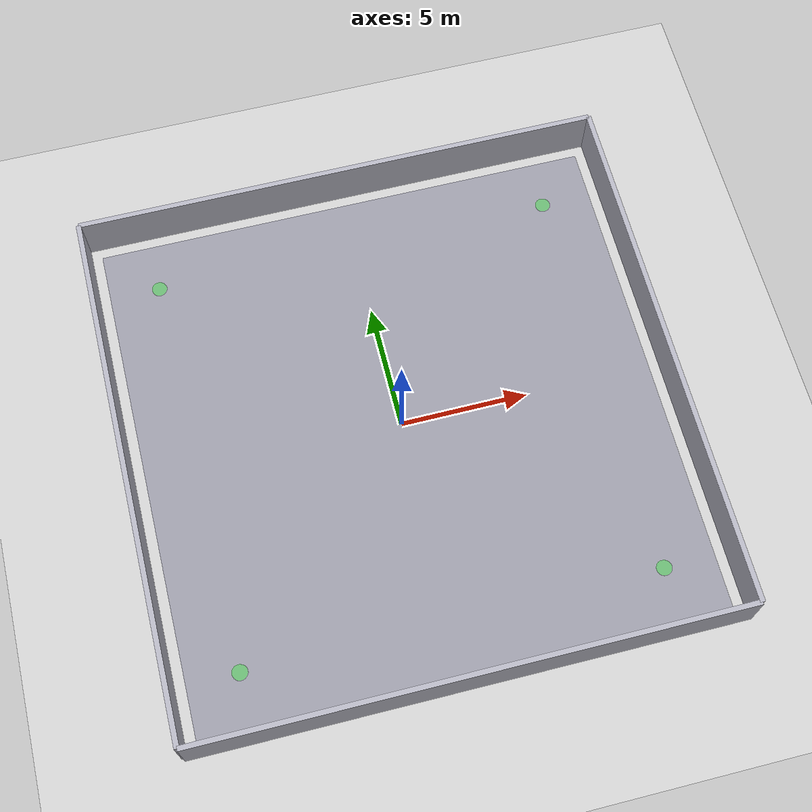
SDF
<?xml version="1.0"?>
<sdf version="1.6">
  <world name="empty_warehouse">
    <!-- Physics properties -->
    <physics name="default_physics" default="true" type="ode">
      <max_step_size>0.001</max_step_size>
      <real_time_factor>1.0</real_time_factor>
      <real_time_update_rate>1000</real_time_update_rate>
    </physics>

    <!-- Scene settings -->
    <scene>
      <ambient>0.4 0.4 0.4 1</ambient>
      <background>0.7 0.7 0.7 1</background>
      <shadows>true</shadows>
    </scene>

    <!-- Ground plane -->
    <model name="ground_plane">
      <static>true</static>
      <link name="link">
        <collision name="collision">
          <geometry>
            <plane>
              <normal>0 0 1</normal>
              <size>100 100</size>
            </plane>
          </geometry>
          <surface>
            <friction>
              <ode>
                <mu>100</mu>
                <mu2>50</mu2>
              </ode>
            </friction>
          </surface>
        </collision>
        <visual name="visual">
          <geometry>
            <plane>
              <normal>0 0 1</normal>
              <size>100 100</size>
            </plane>
          </geometry>
          <material>
            <ambient>0.8 0.8 0.8 1</ambient>
            <diffuse>0.8 0.8 0.8 1</diffuse>
            <specular>0.1 0.1 0.1 1</specular>
          </material>
        </visual>
      </link>
    </model>

    <!-- Warehouse floor (20m x 20m) -->
    <model name="warehouse_floor">
      <static>true</static>
      <pose>0 0 0.01 0 0 0</pose>
      <link name="floor_link">
        <visual name="floor_visual">
          <geometry>
            <box>
              <size>20 20 0.02</size>
            </box>
          </geometry>
          <material>
            <ambient>0.6 0.6 0.65 1</ambient>
            <diffuse>0.6 0.6 0.65 1</diffuse>
            <specular>0.2 0.2 0.2 1</specular>
          </material>
        </visual>
      </link>
    </model>

    <!-- Sun light -->
    <light name="sun" type="directional">
      <cast_shadows>true</cast_shadows>
      <pose>0 0 10 0 0 0</pose>
      <diffuse>0.8 0.8 0.8 1</diffuse>
      <specular>0.2 0.2 0.2 1</specular>
      <attenuation>
        <range>1000</range>
        <constant>0.9</constant>
        <linear>0.01</linear>
        <quadratic>0.001</quadratic>
      </attenuation>
      <direction>-0.5 0.1 -0.9</direction>
    </light>

    <!-- Warehouse ceiling lights -->
    <light name="ceiling_light_1" type="point">
      <pose>-5 -5 8 0 0 0</pose>
      <diffuse>0.9 0.9 0.9 1</diffuse>
      <specular>0.1 0.1 0.1 1</specular>
      <attenuation>
        <range>15</range>
        <constant>0.5</constant>
        <linear>0.1</linear>
        <quadratic>0.01</quadratic>
      </attenuation>
    </light>

    <light name="ceiling_light_2" type="point">
      <pose>5 -5 8 0 0 0</pose>
      <diffuse>0.9 0.9 0.9 1</diffuse>
      <specular>0.1 0.1 0.1 1</specular>
      <attenuation>
        <range>15</range>
        <constant>0.5</constant>
        <linear>0.1</linear>
        <quadratic>0.01</quadratic>
      </attenuation>
    </light>

    <light name="ceiling_light_3" type="point">
      <pose>-5 5 8 0 0 0</pose>
      <diffuse>0.9 0.9 0.9 1</diffuse>
      <specular>0.1 0.1 0.1 1</specular>
      <attenuation>
        <range>15</range>
        <constant>0.5</constant>
        <linear>0.1</linear>
        <quadratic>0.01</quadratic>
      </attenuation>
    </light>

    <light name="ceiling_light_4" type="point">
      <pose>5 5 8 0 0 0</pose>
      <diffuse>0.9 0.9 0.9 1</diffuse>
      <specular>0.1 0.1 0.1 1</specular>
      <attenuation>
        <range>15</range>
        <constant>0.5</constant>
        <linear>0.1</linear>
        <quadratic>0.01</quadratic>
      </attenuation>
    </light>

    <!-- Spawn points (visual markers only) -->
    <model name="spawn_point_1">
      <static>true</static>
      <pose>-8 -8 0.1 0 0 0</pose>
      <link name="marker">
        <visual name="marker_visual">
          <geometry>
            <cylinder>
              <radius>0.3</radius>
              <length>0.02</length>
            </cylinder>
          </geometry>
          <material>
            <ambient>0 1 0 0.3</ambient>
            <diffuse>0 1 0 0.3</diffuse>
            <transparency>0.7</transparency>
          </material>
        </visual>
      </link>
    </model>

    <model name="spawn_point_2">
      <static>true</static>
      <pose>8 -8 0.1 0 0 0</pose>
      <link name="marker">
        <visual name="marker_visual">
          <geometry>
            <cylinder>
              <radius>0.3</radius>
              <length>0.02</length>
            </cylinder>
          </geometry>
          <material>
            <ambient>0 1 0 0.3</ambient>
            <diffuse>0 1 0 0.3</diffuse>
            <transparency>0.7</transparency>
          </material>
        </visual>
      </link>
    </model>

    <model name="spawn_point_3">
      <static>true</static>
      <pose>-8 8 0.1 0 0 0</pose>
      <link name="marker">
        <visual name="marker_visual">
          <geometry>
            <cylinder>
              <radius>0.3</radius>
              <length>0.02</length>
            </cylinder>
          </geometry>
          <material>
            <ambient>0 1 0 0.3</ambient>
            <diffuse>0 1 0 0.3</diffuse>
            <transparency>0.7</transparency>
          </material>
        </visual>
      </link>
    </model>

    <model name="spawn_point_4">
      <static>true</static>
      <pose>8 8 0.1 0 0 0</pose>
      <link name="marker">
        <visual name="marker_visual">
          <geometry>
            <cylinder>
              <radius>0.3</radius>
              <length>0.02</length>
            </cylinder>
          </geometry>
          <material>
            <ambient>0 1 0 0.3</ambient>
            <diffuse>0 1 0 0.3</diffuse>
            <transparency>0.7</transparency>
          </material>
        </visual>
      </link>
    </model>

    <!-- Warehouse walls (optional boundaries) -->
    <model name="wall_north">
      <static>true</static>
      <pose>0 -10.5 1 0 0 0</pose>
      <link name="wall">
        <collision name="collision">
          <geometry>
            <box>
              <size>21 0.2 2</size>
            </box>
          </geometry>
        </collision>
        <visual name="visual">
          <geometry>
            <box>
              <size>21 0.2 2</size>
            </box>
          </geometry>
          <material>
            <ambient>0.7 0.7 0.75 1</ambient>
            <diffuse>0.7 0.7 0.75 1</diffuse>
          </material>
        </visual>
      </link>
    </model>

    <model name="wall_south">
      <static>true</static>
      <pose>0 10.5 1 0 0 0</pose>
      <link name="wall">
        <collision name="collision">
          <geometry>
            <box>
              <size>21 0.2 2</size>
            </box>
          </geometry>
        </collision>
        <visual name="visual">
          <geometry>
            <box>
              <size>21 0.2 2</size>
            </box>
          </geometry>
          <material>
            <ambient>0.7 0.7 0.75 1</ambient>
            <diffuse>0.7 0.7 0.75 1</diffuse>
          </material>
        </visual>
      </link>
    </model>

    <model name="wall_east">
      <static>true</static>
      <pose>10.5 0 1 0 0 0</pose>
      <link name="wall">
        <collision name="collision">
          <geometry>
            <box>
              <size>0.2 21 2</size>
            </box>
          </geometry>
        </collision>
        <visual name="visual">
          <geometry>
            <box>
              <size>0.2 21 2</size>
            </box>
          </geometry>
          <material>
            <ambient>0.7 0.7 0.75 1</ambient>
            <diffuse>0.7 0.7 0.75 1</diffuse>
          </material>
        </visual>
      </link>
    </model>

    <model name="wall_west">
      <static>true</static>
      <pose>-10.5 0 1 0 0 0</pose>
      <link name="wall">
        <collision name="collision">
          <geometry>
            <box>
              <size>0.2 21 2</size>
            </box>
          </geometry>
        </collision>
        <visual name="visual">
          <geometry>
            <box>
              <size>0.2 21 2</size>
            </box>
          </geometry>
          <material>
            <ambient>0.7 0.7 0.75 1</ambient>
            <diffuse>0.7 0.7 0.75 1</diffuse>
          </material>
        </visual>
      </link>
    </model>

    <!-- Plugins -->
    <plugin name="gazebo_ros_state" filename="libgazebo_ros_state.so"/>
    <plugin name="gazebo_ros_factory" filename="libgazebo_ros_factory.so"/>

  </world>
</sdf>
